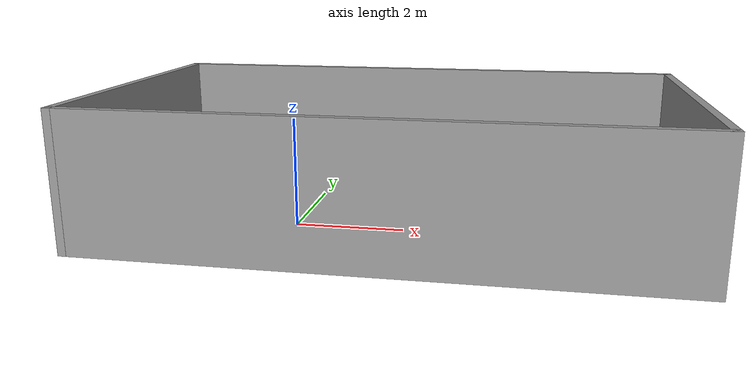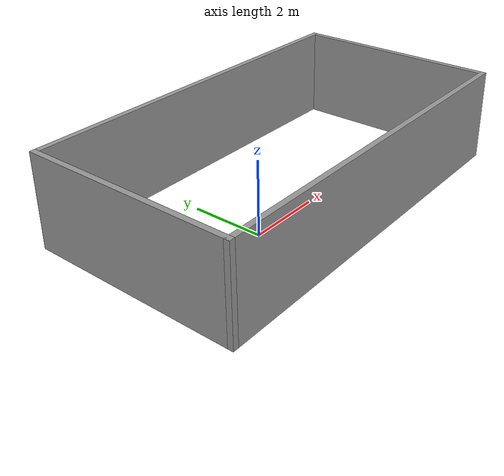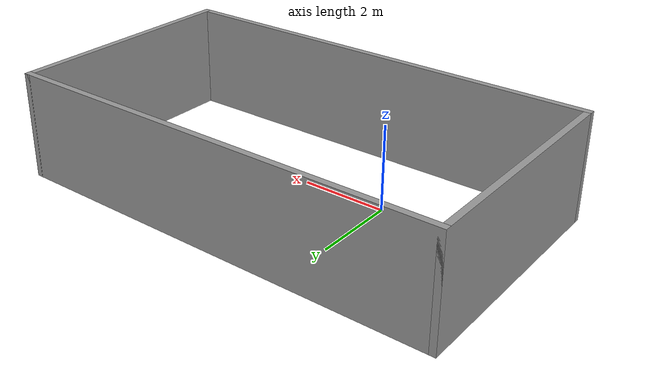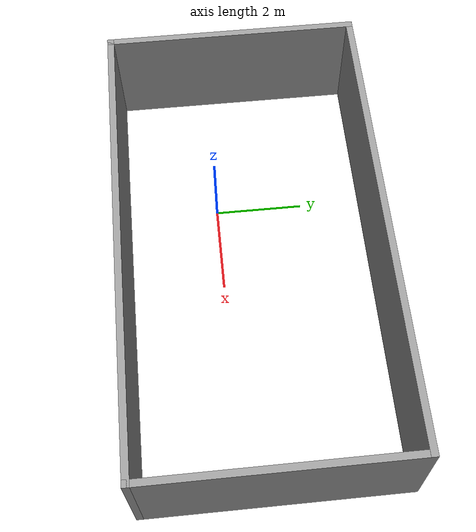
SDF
<?xml version='1.0'?>
<sdf version='1.7'>
  <model name='room'>
    <pose>1.8015 0.663833 0 0 -0 0</pose>
    <link name='Wall_4'>
      <collision name='Wall_4_Collision'>
        <geometry>
          <box>
            <size>5.75 0.15 2.5</size>
          </box>
        </geometry>
        <pose>0 0 1.25 0 -0 0</pose>
      </collision>
      <visual name='Wall_4_Visual'>
        <pose>0 0 1.25 0 -0 0</pose>
        <geometry>
          <box>
            <size>5.75 0.15 2.5</size>
          </box>
        </geometry>
        <material>
          <script>
            <uri>file://media/materials/scripts/gazebo.material</uri>
            <name>Gazebo/Grey</name>
          </script>
          <ambient>1 1 1 1</ambient>
        </material>
        <meta>
          <layer>0</layer>
        </meta>
      </visual>
      <pose>-5.175 0 0 0 -0 1.5708</pose>
    </link>
    <link name='Wall_5'>
      <collision name='Wall_5_Collision'>
        <geometry>
          <box>
            <size>10.5 0.15 2.5</size>
          </box>
        </geometry>
        <pose>0 0 1.25 0 -0 0</pose>
      </collision>
      <visual name='Wall_5_Visual'>
        <pose>0 0 1.25 0 -0 0</pose>
        <geometry>
          <box>
            <size>10.5 0.15 2.5</size>
          </box>
        </geometry>
        <material>
          <script>
            <uri>file://media/materials/scripts/gazebo.material</uri>
            <name>Gazebo/Grey</name>
          </script>
          <ambient>1 1 1 1</ambient>
        </material>
        <meta>
          <layer>0</layer>
        </meta>
      </visual>
      <pose>0 2.8 0 0 -0 0</pose>
    </link>
    <link name='Wall_6'>
      <collision name='Wall_6_Collision'>
        <geometry>
          <box>
            <size>5.75 0.15 2.5</size>
          </box>
        </geometry>
        <pose>0 0 1.25 0 -0 0</pose>
      </collision>
      <visual name='Wall_6_Visual'>
        <pose>0 0 1.25 0 -0 0</pose>
        <geometry>
          <box>
            <size>5.75 0.15 2.5</size>
          </box>
        </geometry>
        <material>
          <script>
            <uri>file://media/materials/scripts/gazebo.material</uri>
            <name>Gazebo/Grey</name>
          </script>
          <ambient>1 1 1 1</ambient>
        </material>
        <meta>
          <layer>0</layer>
        </meta>
      </visual>
      <pose>5.175 0 0 0 -0 -1.5708</pose>
    </link>
    <link name='Wall_7'>
      <collision name='Wall_7_Collision'>
        <geometry>
          <box>
            <size>10.5 0.15 2.5</size>
          </box>
        </geometry>
        <pose>0 0 1.25 0 -0 0</pose>
      </collision>
      <visual name='Wall_7_Visual'>
        <pose>0 0 1.25 0 -0 0</pose>
        <geometry>
          <box>
            <size>10.5 0.15 2.5</size>
          </box>
        </geometry>
        <material>
          <script>
            <uri>file://media/materials/scripts/gazebo.material</uri>
            <name>Gazebo/Grey</name>
          </script>
          <ambient>1 1 1 1</ambient>
        </material>
        <meta>
          <layer>0</layer>
        </meta>
      </visual>
      <pose>0 -2.8 0 0 -0 3.14159</pose>
    </link>
    <static>1</static>
  </model>
</sdf>
